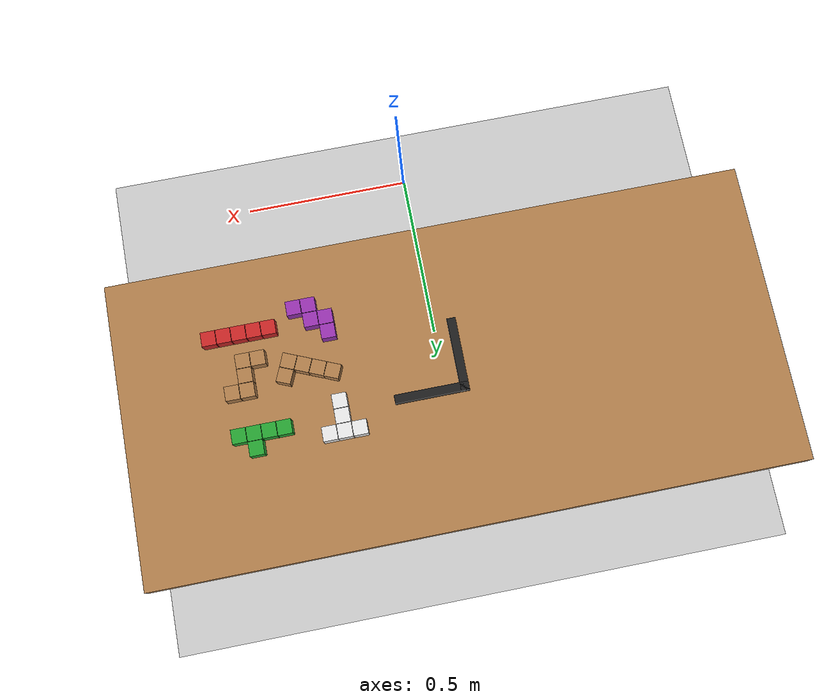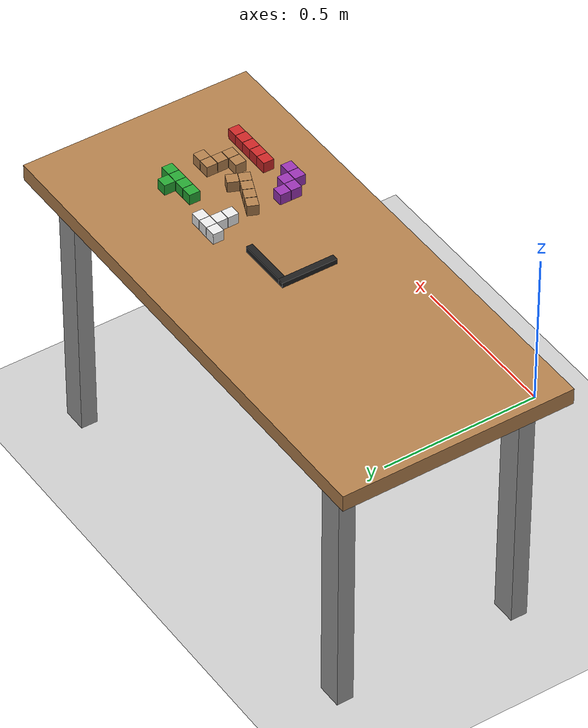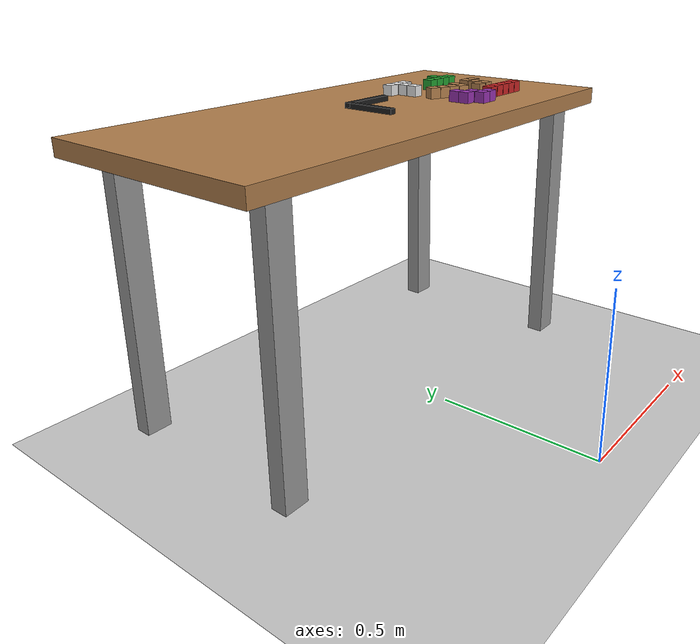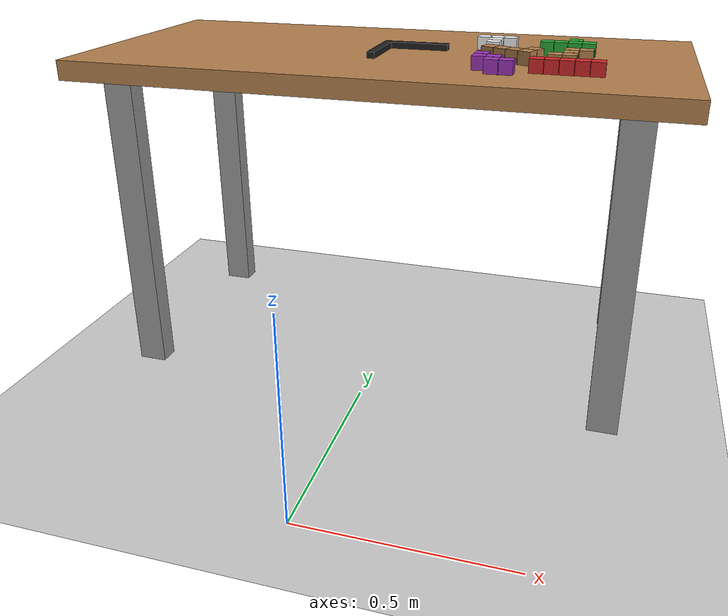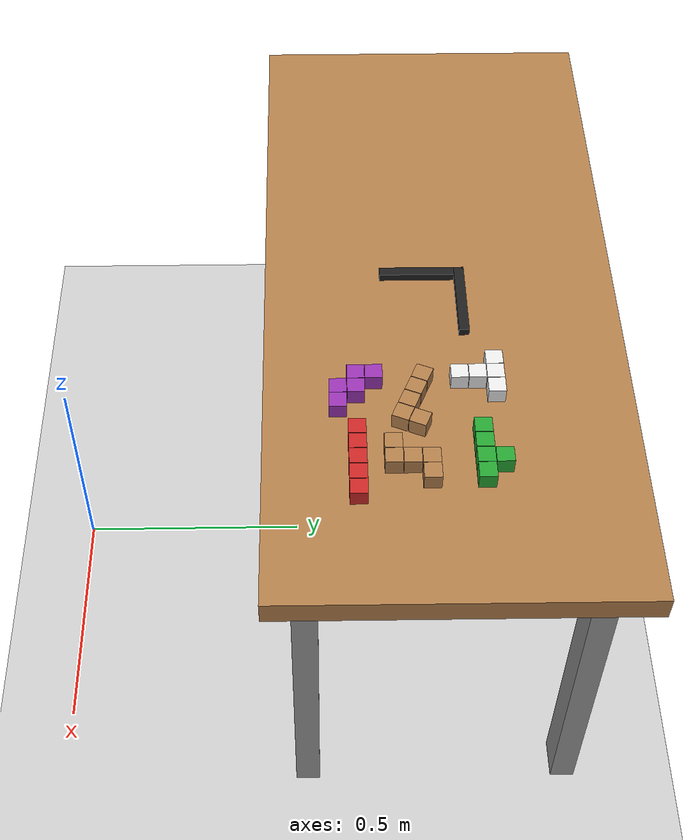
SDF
<?xml version="1.0" ?>
<!-- |    This document was autogenerated by xacro from euroc-freestyle.world.xacro    | -->
<!-- |    EDITING THIS FILE BY HAND IS NOT RECOMMENDED                                 | -->
<sdf version="1.4" xmlns:xacro="http://www.ros.org/wiki/xacro">
  <!-- only 4 yaws are allowed, given by tQ -->
  <!-- Only 0 and 3 (rotated -pi/2) accepted by now -->
  <!-- table pose in world frame -->
  <!-- pentomino-fixture name and pose in table frame -->
  <!-- grid pose in pentomino-fixture frame -->
  <!-- pentomino pose in grid frame -->
  <world name="pentomino_board6x5_8">
    <include>
      <uri>model://ground_plane</uri>
    </include>
    <include>
      <uri>model://sun</uri>
    </include>
    <include>
      <uri>model://DLR_workbench</uri>
      <name>workbench_fixture</name>
      <pose>0 0.8 00 0 0 4.71238898038</pose>
      <static>true</static>
    </include>
    <include>
      <uri>model://pentomino_fixture</uri>
      <pose>-0.01 0.83 0.85 0 0 4.71238898038</pose>
    </include>
    <include>
      <uri>model://pentomino_L</uri>
      <!-- if tQ == 3 -->
      <pose>0.326 0.724 0.883 0 3.14159265359 4.31096325242</pose>
    </include>
    <include>
      <uri>model://pentomino_I</uri>
      <!-- if tQ == 3 -->
      <pose>0.458 0.625 0.883 0 3.14159265359 4.71238898038</pose>
    </include>
    <include>
      <uri>model://pentomino_W</uri>
      <!-- if tQ == 3 -->
      <pose>0.293 0.625 0.883 0 3.14159265359 4.71238898038</pose>
    </include>
    <include>
      <uri>model://pentomino_T</uri>
      <!-- if tQ == 3 -->
      <pose>0.26 0.889 0.85 0 0.0 4.71238898038</pose>
    </include>
    <include>
      <uri>model://pentomino_Y</uri>
      <!-- if tQ == 3 -->
      <pose>0.458 0.856 0.883 0 3.14159265359 4.71238898038</pose>
    </include>
    <include>
      <uri>model://pentomino_Z</uri>
      <!-- if tQ == 3 -->
      <pose>0.458 0.724 0.883 0 3.14159265359 4.71238898038</pose>
    </include>
  </world>
</sdf>

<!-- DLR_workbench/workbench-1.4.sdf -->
<!-- |    This document was autogenerated by xacro from workbench-1.4.sdf.xacro        | -->
<!-- |    EDITING THIS FILE BY HAND IS NOT RECOMMENDED                                 | -->
<sdf version="1.4" xmlns:xacro="http://www.ros.org/wiki/xacro">
  <model name="DLR_workbench">
    <pose>0 0 0 0 0 0</pose>
    <static>false</static>
    <link name="main_body">
      <pose>0 0 0 0 0 0</pose>
      <!-- workbench top -->
      <collision name="top">
        <geometry>
          <box>
            <size>0.70 1.50 0.05</size>
          </box>
        </geometry>
        <pose>0 0 0.825 0 0 0</pose>
        <surface>
            <friction>
              <ode>
                <mu>0.7</mu>
                <mu2>0.7</mu2>
              </ode>
            </friction>
        </surface>
      </collision>
      <visual name="top">
        <geometry>
          <box>
            <size>0.70 1.50 0.05</size>
          </box>
        </geometry>
        <pose>0 0 0.825 0 0 0</pose>
        <material>
          <script>
            <name>Gazebo/Wood</name>
          </script>
        </material>
      </visual>
      <!-- left rear leg -->
      <collision name="left_rear_leg">
        <geometry>
          <box>
            <size>0.05 0.075 0.80</size>
          </box>
        </geometry>
        <pose>-0.275 -0.6225 0.40 0 0 0</pose>
      </collision>
      <visual name="left_rear_leg">
        <geometry>
          <box>
            <size>0.05 0.075 0.80</size>
          </box>
        </geometry>
        <pose>-0.275 -0.6225 0.40 0 0 0</pose>
        <material>
          <script>
            <name>Gazebo/Grey</name>
          </script>
        </material>
      </visual>
      <!-- right rear leg -->
      <collision name="left_rear_leg">
        <geometry>
          <box>
            <size>0.05 0.075 0.80</size>
          </box>
        </geometry>
        <pose>-0.275 0.6225 0.40 0 0 0</pose>
      </collision>
      <visual name="right_rear_leg">
        <geometry>
          <box>
            <size>0.05 0.075 0.80</size>
          </box>
        </geometry>
        <pose>-0.275 0.6225 0.40 0 0 0</pose>
        <material>
          <script>
            <name>Gazebo/Grey</name>
          </script>
        </material>
      </visual>
      <!-- left front leg -->
      <collision name="left_rear_leg">
        <geometry>
          <box>
            <size>0.05 0.075 0.80</size>
          </box>
        </geometry>
        <pose>0.275 -0.6225 0.40 0 0 0</pose>
      </collision>
      <visual name="left_front_leg">
        <geometry>
          <box>
            <size>0.05 0.075 0.80</size>
          </box>
        </geometry>
        <pose>0.275 -0.6225 0.40 0 0 0</pose>
        <material>
          <script>
            <name>Gazebo/Grey</name>
          </script>
        </material>
      </visual>
      <!-- right front leg -->
      <collision name="left_rear_leg">
        <geometry>
          <box>
            <size>0.05 0.075 0.80</size>
          </box>
        </geometry>
        <pose>0.275 0.6225 0.40 0 0 0</pose>
      </collision>
      <visual name="right_front_leg">
        <geometry>
          <box>
            <size>0.05 0.075 0.80</size>
          </box>
        </geometry>
        <pose>0.275 0.6225 0.40 0 0 0</pose>
        <material>
          <script>
            <name>Gazebo/Grey</name>
          </script>
        </material>
      </visual>
      <!-- inertial model -->
      <inertial>
        <pose>0 0 0.8204 0 0 0</pose>
        <mass>50.0</mass>
        <inertia>
          <!-- interias are tricky to compute -->
          <!-- http://answers.gazebosim.org/question/4372/the-inertia-matrix-explained/ -->
          <ixx>9.60785914583</ixx>
          <ixy>0.0</ixy>
          <ixz>0.0</ixz>
          <iyy>2.20301594404</iyy>
          <iyz>0.0</iyz>
          <izz>11.5369686393</izz>
        </inertia>
      </inertial>
    </link>
  </model>
</sdf>

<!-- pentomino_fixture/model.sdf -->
<!-- |    This document was autogenerated by xacro from model.sdf.xacro                | -->
<!-- |    EDITING THIS FILE BY HAND IS NOT RECOMMENDED                                 | -->
<sdf version="1.4" xmlns:xacro="http://www.ros.org/wiki/xacro">
  <model name="pentomino_fixture">
    <static>true</static>
    <link name="pentomino_fixture">
      <collision name="bar_H">
        <geometry>
          <box>
            <size>0.02 0.17 0.016</size>
          </box>
        </geometry>
        <pose>-0.01 0.065 0.008 0 0 0</pose>
      </collision>
      <visual name="bar_H">
        <geometry>
          <box>
            <size>0.02 0.17 0.016</size>
          </box>
        </geometry>
        <pose>-0.01 0.065 0.008 0 0 0</pose>
        <material>
          <script>
            <name>Gazebo/Black</name>
          </script>
        </material>
      </visual>
      <collision name="bar_V">
        <geometry>
          <box>
            <size>0.02 0.17 0.016</size>
          </box>
        </geometry>
        <pose>0.065 -0.01 0.008 0 0 1.57079632679</pose>
      </collision>
      <visual name="bar_V">
        <geometry>
          <box>
            <size>0.02 0.17 0.016</size>
          </box>
        </geometry>
        <pose>0.065 -0.01 0.008 0 0 1.57079632679</pose>
        <material>
          <script>
            <name>Gazebo/Black</name>
          </script>
        </material>
      </visual>
    </link>
  </model>
</sdf>

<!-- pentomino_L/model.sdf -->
<!-- |    This document was autogenerated by xacro from L.xacro                        | -->
<!-- |    EDITING THIS FILE BY HAND IS NOT RECOMMENDED                                 | -->
<sdf version="1.4" xmlns:xacro="http://www.ros.org/wiki/xacro">
  <model name="pentomino_L">
    <link name="pentomino_L">
      <velocity_decay>
        <linear>0.01</linear>
        <angular>1.0</angular>
      </velocity_decay>
      <visual name="cube_0_0">
        <pose>0.0 0.0 0.0165 0 0 0</pose>
        <geometry>
          <box>
            <size>0.033 0.033 0.033</size>
          </box>
        </geometry>
        <material>
          <script>
            <name>Gazebo/Wood</name>
          </script>
        </material>
      </visual>
      <collision name="cube_0_0">
        <pose>0.0 0.0 0.0165 0 0 0</pose>
        <geometry>
          <box>
            <size>0.033 0.033 0.033</size>
          </box>
        </geometry>
        <surface>
          <bounce>
            <restitution_coefficient>0.0</restitution_coefficient>
          </bounce>
          <friction>
            <ode>
              <mu>1.0</mu>
              <mu2>1.0</mu2>
            </ode>
          </friction>
        </surface>
      </collision>
      <visual name="cube_0_-1">
        <pose>0.0 -0.034 0.0165 0 0 0</pose>
        <geometry>
          <box>
            <size>0.033 0.033 0.033</size>
          </box>
        </geometry>
        <material>
          <script>
            <name>Gazebo/Wood</name>
          </script>
        </material>
      </visual>
      <collision name="cube_0_-1">
        <pose>0.0 -0.034 0.0165 0 0 0</pose>
        <geometry>
          <box>
            <size>0.033 0.033 0.033</size>
          </box>
        </geometry>
        <surface>
          <bounce>
            <restitution_coefficient>0.0</restitution_coefficient>
          </bounce>
          <friction>
            <ode>
              <mu>1.0</mu>
              <mu2>1.0</mu2>
            </ode>
          </friction>
        </surface>
      </collision>
      <visual name="cube_0_-2">
        <pose>0.0 -0.068 0.0165 0 0 0</pose>
        <geometry>
          <box>
            <size>0.033 0.033 0.033</size>
          </box>
        </geometry>
        <material>
          <script>
            <name>Gazebo/Wood</name>
          </script>
        </material>
      </visual>
      <collision name="cube_0_-2">
        <pose>0.0 -0.068 0.0165 0 0 0</pose>
        <geometry>
          <box>
            <size>0.033 0.033 0.033</size>
          </box>
        </geometry>
        <surface>
          <bounce>
            <restitution_coefficient>0.0</restitution_coefficient>
          </bounce>
          <friction>
            <ode>
              <mu>1.0</mu>
              <mu2>1.0</mu2>
            </ode>
          </friction>
        </surface>
      </collision>
      <visual name="cube_0_1">
        <pose>0.0 0.034 0.0165 0 0 0</pose>
        <geometry>
          <box>
            <size>0.033 0.033 0.033</size>
          </box>
        </geometry>
        <material>
          <script>
            <name>Gazebo/Wood</name>
          </script>
        </material>
      </visual>
      <collision name="cube_0_1">
        <pose>0.0 0.034 0.0165 0 0 0</pose>
        <geometry>
          <box>
            <size>0.033 0.033 0.033</size>
          </box>
        </geometry>
        <surface>
          <bounce>
            <restitution_coefficient>0.0</restitution_coefficient>
          </bounce>
          <friction>
            <ode>
              <mu>1.0</mu>
              <mu2>1.0</mu2>
            </ode>
          </friction>
        </surface>
      </collision>
      <visual name="cube_1_1">
        <pose>0.034 0.034 0.0165 0 0 0</pose>
        <geometry>
          <box>
            <size>0.033 0.033 0.033</size>
          </box>
        </geometry>
        <material>
          <script>
            <name>Gazebo/Wood</name>
          </script>
        </material>
      </visual>
      <collision name="cube_1_1">
        <pose>0.034 0.034 0.0165 0 0 0</pose>
        <geometry>
          <box>
            <size>0.033 0.033 0.033</size>
          </box>
        </geometry>
        <surface>
          <bounce>
            <restitution_coefficient>0.0</restitution_coefficient>
          </bounce>
          <friction>
            <ode>
              <mu>1.0</mu>
              <mu2>1.0</mu2>
            </ode>
          </friction>
        </surface>
      </collision>
      <inertial name="cube_0_0">
        <pose>0.034 0.034 0.0165 0 0 0</pose>
        <mass>0.2</mass>
        <inertia>
          <ixx>0.02178</ixx>
          <!-- TODO -->
          <iyy>0.02178</iyy>
          <izz>0.02178</izz>
          <ixy>0</ixy>
          <ixz>0</ixz>
          <iyz>0</iyz>
        </inertia>
      </inertial>
    </link>
  </model>
</sdf>

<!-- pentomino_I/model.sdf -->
<!-- |    This document was autogenerated by xacro from I.xacro                        | -->
<!-- |    EDITING THIS FILE BY HAND IS NOT RECOMMENDED                                 | -->
<sdf version="1.4" xmlns:xacro="http://www.ros.org/wiki/xacro">
  <model name="pentomino_I">
    <link name="pentomino_I">
      <velocity_decay>
        <linear>0.01</linear>
        <angular>1.0</angular>
      </velocity_decay>
      <visual name="cube_0_0">
        <pose>0.0 0.0 0.0165 0 0 0</pose>
        <geometry>
          <box>
            <size>0.033 0.033 0.033</size>
          </box>
        </geometry>
        <material>
          <script>
            <name>Gazebo/Red</name>
          </script>
        </material>
      </visual>
      <collision name="cube_0_0">
        <pose>0.0 0.0 0.0165 0 0 0</pose>
        <geometry>
          <box>
            <size>0.033 0.033 0.033</size>
          </box>
        </geometry>
        <surface>
          <bounce>
            <restitution_coefficient>0.0</restitution_coefficient>
          </bounce>
          <friction>
            <ode>
              <mu>1.0</mu>
              <mu2>1.0</mu2>
            </ode>
          </friction>
        </surface>
      </collision>
      <visual name="cube_0_1">
        <pose>0.0 0.034 0.0165 0 0 0</pose>
        <geometry>
          <box>
            <size>0.033 0.033 0.033</size>
          </box>
        </geometry>
        <material>
          <script>
            <name>Gazebo/Red</name>
          </script>
        </material>
      </visual>
      <collision name="cube_0_1">
        <pose>0.0 0.034 0.0165 0 0 0</pose>
        <geometry>
          <box>
            <size>0.033 0.033 0.033</size>
          </box>
        </geometry>
        <surface>
          <bounce>
            <restitution_coefficient>0.0</restitution_coefficient>
          </bounce>
          <friction>
            <ode>
              <mu>1.0</mu>
              <mu2>1.0</mu2>
            </ode>
          </friction>
        </surface>
      </collision>
      <visual name="cube_0_-1">
        <pose>0.0 -0.034 0.0165 0 0 0</pose>
        <geometry>
          <box>
            <size>0.033 0.033 0.033</size>
          </box>
        </geometry>
        <material>
          <script>
            <name>Gazebo/Red</name>
          </script>
        </material>
      </visual>
      <collision name="cube_0_-1">
        <pose>0.0 -0.034 0.0165 0 0 0</pose>
        <geometry>
          <box>
            <size>0.033 0.033 0.033</size>
          </box>
        </geometry>
        <surface>
          <bounce>
            <restitution_coefficient>0.0</restitution_coefficient>
          </bounce>
          <friction>
            <ode>
              <mu>1.0</mu>
              <mu2>1.0</mu2>
            </ode>
          </friction>
        </surface>
      </collision>
      <visual name="cube_0_2">
        <pose>0.0 0.068 0.0165 0 0 0</pose>
        <geometry>
          <box>
            <size>0.033 0.033 0.033</size>
          </box>
        </geometry>
        <material>
          <script>
            <name>Gazebo/Red</name>
          </script>
        </material>
      </visual>
      <collision name="cube_0_2">
        <pose>0.0 0.068 0.0165 0 0 0</pose>
        <geometry>
          <box>
            <size>0.033 0.033 0.033</size>
          </box>
        </geometry>
        <surface>
          <bounce>
            <restitution_coefficient>0.0</restitution_coefficient>
          </bounce>
          <friction>
            <ode>
              <mu>1.0</mu>
              <mu2>1.0</mu2>
            </ode>
          </friction>
        </surface>
      </collision>
      <visual name="cube_0_-2">
        <pose>0.0 -0.068 0.0165 0 0 0</pose>
        <geometry>
          <box>
            <size>0.033 0.033 0.033</size>
          </box>
        </geometry>
        <material>
          <script>
            <name>Gazebo/Red</name>
          </script>
        </material>
      </visual>
      <collision name="cube_0_-2">
        <pose>0.0 -0.068 0.0165 0 0 0</pose>
        <geometry>
          <box>
            <size>0.033 0.033 0.033</size>
          </box>
        </geometry>
        <surface>
          <bounce>
            <restitution_coefficient>0.0</restitution_coefficient>
          </bounce>
          <friction>
            <ode>
              <mu>1.0</mu>
              <mu2>1.0</mu2>
            </ode>
          </friction>
        </surface>
      </collision>
      <inertial name="cube_0_0">
        <pose>0.034 0.034 0.0165 0 0 0</pose>
        <mass>0.2</mass>
        <inertia>
          <ixx>0.02178</ixx>
          <!-- TODO -->
          <iyy>0.02178</iyy>
          <izz>0.02178</izz>
          <ixy>0</ixy>
          <ixz>0</ixz>
          <iyz>0</iyz>
        </inertia>
      </inertial>
    </link>
  </model>
</sdf>

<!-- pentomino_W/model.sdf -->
<!-- |    This document was autogenerated by xacro from W.xacro                        | -->
<!-- |    EDITING THIS FILE BY HAND IS NOT RECOMMENDED                                 | -->
<sdf version="1.4" xmlns:xacro="http://www.ros.org/wiki/xacro">
  <model name="pentomino_W">
    <link name="pentomino_W">
      <velocity_decay>
        <linear>0.01</linear>
        <angular>1.0</angular>
      </velocity_decay>
      <visual name="cube_0_0">
        <pose>0.0 0.0 0.0165 0 0 0</pose>
        <geometry>
          <box>
            <size>0.033 0.033 0.033</size>
          </box>
        </geometry>
        <material>
          <script>
            <name>Gazebo/Purple</name>
          </script>
        </material>
      </visual>
      <collision name="cube_0_0">
        <pose>0.0 0.0 0.0165 0 0 0</pose>
        <geometry>
          <box>
            <size>0.033 0.033 0.033</size>
          </box>
        </geometry>
        <surface>
          <bounce>
            <restitution_coefficient>0.0</restitution_coefficient>
          </bounce>
          <friction>
            <ode>
              <mu>1.0</mu>
              <mu2>1.0</mu2>
            </ode>
          </friction>
        </surface>
      </collision>
      <visual name="cube_-1_0">
        <pose>-0.034 0.0 0.0165 0 0 0</pose>
        <geometry>
          <box>
            <size>0.033 0.033 0.033</size>
          </box>
        </geometry>
        <material>
          <script>
            <name>Gazebo/Purple</name>
          </script>
        </material>
      </visual>
      <collision name="cube_-1_0">
        <pose>-0.034 0.0 0.0165 0 0 0</pose>
        <geometry>
          <box>
            <size>0.033 0.033 0.033</size>
          </box>
        </geometry>
        <surface>
          <bounce>
            <restitution_coefficient>0.0</restitution_coefficient>
          </bounce>
          <friction>
            <ode>
              <mu>1.0</mu>
              <mu2>1.0</mu2>
            </ode>
          </friction>
        </surface>
      </collision>
      <visual name="cube_-1_1">
        <pose>-0.034 0.034 0.0165 0 0 0</pose>
        <geometry>
          <box>
            <size>0.033 0.033 0.033</size>
          </box>
        </geometry>
        <material>
          <script>
            <name>Gazebo/Purple</name>
          </script>
        </material>
      </visual>
      <collision name="cube_-1_1">
        <pose>-0.034 0.034 0.0165 0 0 0</pose>
        <geometry>
          <box>
            <size>0.033 0.033 0.033</size>
          </box>
        </geometry>
        <surface>
          <bounce>
            <restitution_coefficient>0.0</restitution_coefficient>
          </bounce>
          <friction>
            <ode>
              <mu>1.0</mu>
              <mu2>1.0</mu2>
            </ode>
          </friction>
        </surface>
      </collision>
      <visual name="cube_0_-1">
        <pose>0.0 -0.034 0.0165 0 0 0</pose>
        <geometry>
          <box>
            <size>0.033 0.033 0.033</size>
          </box>
        </geometry>
        <material>
          <script>
            <name>Gazebo/Purple</name>
          </script>
        </material>
      </visual>
      <collision name="cube_0_-1">
        <pose>0.0 -0.034 0.0165 0 0 0</pose>
        <geometry>
          <box>
            <size>0.033 0.033 0.033</size>
          </box>
        </geometry>
        <surface>
          <bounce>
            <restitution_coefficient>0.0</restitution_coefficient>
          </bounce>
          <friction>
            <ode>
              <mu>1.0</mu>
              <mu2>1.0</mu2>
            </ode>
          </friction>
        </surface>
      </collision>
      <visual name="cube_1_-1">
        <pose>0.034 -0.034 0.0165 0 0 0</pose>
        <geometry>
          <box>
            <size>0.033 0.033 0.033</size>
          </box>
        </geometry>
        <material>
          <script>
            <name>Gazebo/Purple</name>
          </script>
        </material>
      </visual>
      <collision name="cube_1_-1">
        <pose>0.034 -0.034 0.0165 0 0 0</pose>
        <geometry>
          <box>
            <size>0.033 0.033 0.033</size>
          </box>
        </geometry>
        <surface>
          <bounce>
            <restitution_coefficient>0.0</restitution_coefficient>
          </bounce>
          <friction>
            <ode>
              <mu>1.0</mu>
              <mu2>1.0</mu2>
            </ode>
          </friction>
        </surface>
      </collision>
      <inertial name="cube_0_0">
        <pose>0.034 0.034 0.0165 0 0 0</pose>
        <mass>0.2</mass>
        <inertia>
          <ixx>0.02178</ixx>
          <!-- TODO -->
          <iyy>0.02178</iyy>
          <izz>0.02178</izz>
          <ixy>0</ixy>
          <ixz>0</ixz>
          <iyz>0</iyz>
        </inertia>
      </inertial>
    </link>
  </model>
</sdf>

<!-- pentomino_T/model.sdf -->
<!-- |    This document was autogenerated by xacro from T.xacro                        | -->
<!-- |    EDITING THIS FILE BY HAND IS NOT RECOMMENDED                                 | -->
<sdf version="1.4" xmlns:xacro="http://www.ros.org/wiki/xacro">
  <model name="pentomino_T">
    <link name="pentomino_T">
      <velocity_decay>
        <linear>0.01</linear>
        <angular>1.0</angular>
      </velocity_decay>
      <visual name="cube_0_0">
        <pose>0.0 0.0 0.0165 0 0 0</pose>
        <geometry>
          <box>
            <size>0.033 0.033 0.033</size>
          </box>
        </geometry>
        <material>
          <script>
            <name>Gazebo/White</name>
          </script>
        </material>
      </visual>
      <collision name="cube_0_0">
        <pose>0.0 0.0 0.0165 0 0 0</pose>
        <geometry>
          <box>
            <size>0.033 0.033 0.033</size>
          </box>
        </geometry>
        <surface>
          <bounce>
            <restitution_coefficient>0.0</restitution_coefficient>
          </bounce>
          <friction>
            <ode>
              <mu>1.0</mu>
              <mu2>1.0</mu2>
            </ode>
          </friction>
        </surface>
      </collision>
      <visual name="cube_0_-1">
        <pose>0.0 -0.034 0.0165 0 0 0</pose>
        <geometry>
          <box>
            <size>0.033 0.033 0.033</size>
          </box>
        </geometry>
        <material>
          <script>
            <name>Gazebo/White</name>
          </script>
        </material>
      </visual>
      <collision name="cube_0_-1">
        <pose>0.0 -0.034 0.0165 0 0 0</pose>
        <geometry>
          <box>
            <size>0.033 0.033 0.033</size>
          </box>
        </geometry>
        <surface>
          <bounce>
            <restitution_coefficient>0.0</restitution_coefficient>
          </bounce>
          <friction>
            <ode>
              <mu>1.0</mu>
              <mu2>1.0</mu2>
            </ode>
          </friction>
        </surface>
      </collision>
      <visual name="cube_0_1">
        <pose>0.0 0.034 0.0165 0 0 0</pose>
        <geometry>
          <box>
            <size>0.033 0.033 0.033</size>
          </box>
        </geometry>
        <material>
          <script>
            <name>Gazebo/White</name>
          </script>
        </material>
      </visual>
      <collision name="cube_0_1">
        <pose>0.0 0.034 0.0165 0 0 0</pose>
        <geometry>
          <box>
            <size>0.033 0.033 0.033</size>
          </box>
        </geometry>
        <surface>
          <bounce>
            <restitution_coefficient>0.0</restitution_coefficient>
          </bounce>
          <friction>
            <ode>
              <mu>1.0</mu>
              <mu2>1.0</mu2>
            </ode>
          </friction>
        </surface>
      </collision>
      <visual name="cube_1_0">
        <pose>0.034 0.0 0.0165 0 0 0</pose>
        <geometry>
          <box>
            <size>0.033 0.033 0.033</size>
          </box>
        </geometry>
        <material>
          <script>
            <name>Gazebo/White</name>
          </script>
        </material>
      </visual>
      <collision name="cube_1_0">
        <pose>0.034 0.0 0.0165 0 0 0</pose>
        <geometry>
          <box>
            <size>0.033 0.033 0.033</size>
          </box>
        </geometry>
        <surface>
          <bounce>
            <restitution_coefficient>0.0</restitution_coefficient>
          </bounce>
          <friction>
            <ode>
              <mu>1.0</mu>
              <mu2>1.0</mu2>
            </ode>
          </friction>
        </surface>
      </collision>
      <visual name="cube_2_0">
        <pose>0.068 0.0 0.0165 0 0 0</pose>
        <geometry>
          <box>
            <size>0.033 0.033 0.033</size>
          </box>
        </geometry>
        <material>
          <script>
            <name>Gazebo/White</name>
          </script>
        </material>
      </visual>
      <collision name="cube_2_0">
        <pose>0.068 0.0 0.0165 0 0 0</pose>
        <geometry>
          <box>
            <size>0.033 0.033 0.033</size>
          </box>
        </geometry>
        <surface>
          <bounce>
            <restitution_coefficient>0.0</restitution_coefficient>
          </bounce>
          <friction>
            <ode>
              <mu>1.0</mu>
              <mu2>1.0</mu2>
            </ode>
          </friction>
        </surface>
      </collision>
      <inertial name="cube_0_0">
        <pose>0.034 0.034 0.0165 0 0 0</pose>
        <mass>0.2</mass>
        <inertia>
          <ixx>0.02178</ixx>
          <!-- TODO -->
          <iyy>0.02178</iyy>
          <izz>0.02178</izz>
          <ixy>0</ixy>
          <ixz>0</ixz>
          <iyz>0</iyz>
        </inertia>
      </inertial>
    </link>
  </model>
</sdf>

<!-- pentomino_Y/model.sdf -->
<!-- |    This document was autogenerated by xacro from Y.xacro                        | -->
<!-- |    EDITING THIS FILE BY HAND IS NOT RECOMMENDED                                 | -->
<sdf version="1.4" xmlns:xacro="http://www.ros.org/wiki/xacro">
  <model name="pentomino_Y">
    <link name="pentomino_Y">
      <velocity_decay>
        <linear>0.01</linear>
        <angular>1.0</angular>
      </velocity_decay>
      <visual name="cube_0_0">
        <pose>0.0 0.0 0.0165 0 0 0</pose>
        <geometry>
          <box>
            <size>0.033 0.033 0.033</size>
          </box>
        </geometry>
        <material>
          <script>
            <name>Gazebo/Green</name>
          </script>
        </material>
      </visual>
      <collision name="cube_0_0">
        <pose>0.0 0.0 0.0165 0 0 0</pose>
        <geometry>
          <box>
            <size>0.033 0.033 0.033</size>
          </box>
        </geometry>
        <surface>
          <bounce>
            <restitution_coefficient>0.0</restitution_coefficient>
          </bounce>
          <friction>
            <ode>
              <mu>1.0</mu>
              <mu2>1.0</mu2>
            </ode>
          </friction>
        </surface>
      </collision>
      <visual name="cube_0_-1">
        <pose>0.0 -0.034 0.0165 0 0 0</pose>
        <geometry>
          <box>
            <size>0.033 0.033 0.033</size>
          </box>
        </geometry>
        <material>
          <script>
            <name>Gazebo/Green</name>
          </script>
        </material>
      </visual>
      <collision name="cube_0_-1">
        <pose>0.0 -0.034 0.0165 0 0 0</pose>
        <geometry>
          <box>
            <size>0.033 0.033 0.033</size>
          </box>
        </geometry>
        <surface>
          <bounce>
            <restitution_coefficient>0.0</restitution_coefficient>
          </bounce>
          <friction>
            <ode>
              <mu>1.0</mu>
              <mu2>1.0</mu2>
            </ode>
          </friction>
        </surface>
      </collision>
      <visual name="cube_0_-2">
        <pose>0.0 -0.068 0.0165 0 0 0</pose>
        <geometry>
          <box>
            <size>0.033 0.033 0.033</size>
          </box>
        </geometry>
        <material>
          <script>
            <name>Gazebo/Green</name>
          </script>
        </material>
      </visual>
      <collision name="cube_0_-2">
        <pose>0.0 -0.068 0.0165 0 0 0</pose>
        <geometry>
          <box>
            <size>0.033 0.033 0.033</size>
          </box>
        </geometry>
        <surface>
          <bounce>
            <restitution_coefficient>0.0</restitution_coefficient>
          </bounce>
          <friction>
            <ode>
              <mu>1.0</mu>
              <mu2>1.0</mu2>
            </ode>
          </friction>
        </surface>
      </collision>
      <visual name="cube_0_1">
        <pose>0.0 0.034 0.0165 0 0 0</pose>
        <geometry>
          <box>
            <size>0.033 0.033 0.033</size>
          </box>
        </geometry>
        <material>
          <script>
            <name>Gazebo/Green</name>
          </script>
        </material>
      </visual>
      <collision name="cube_0_1">
        <pose>0.0 0.034 0.0165 0 0 0</pose>
        <geometry>
          <box>
            <size>0.033 0.033 0.033</size>
          </box>
        </geometry>
        <surface>
          <bounce>
            <restitution_coefficient>0.0</restitution_coefficient>
          </bounce>
          <friction>
            <ode>
              <mu>1.0</mu>
              <mu2>1.0</mu2>
            </ode>
          </friction>
        </surface>
      </collision>
      <visual name="cube_1_0">
        <pose>0.034 0.0 0.0165 0 0 0</pose>
        <geometry>
          <box>
            <size>0.033 0.033 0.033</size>
          </box>
        </geometry>
        <material>
          <script>
            <name>Gazebo/Green</name>
          </script>
        </material>
      </visual>
      <collision name="cube_1_0">
        <pose>0.034 0.0 0.0165 0 0 0</pose>
        <geometry>
          <box>
            <size>0.033 0.033 0.033</size>
          </box>
        </geometry>
        <surface>
          <bounce>
            <restitution_coefficient>0.0</restitution_coefficient>
          </bounce>
          <friction>
            <ode>
              <mu>1.0</mu>
              <mu2>1.0</mu2>
            </ode>
          </friction>
        </surface>
      </collision>
      <inertial name="cube_0_0">
        <pose>0.034 0.034 0.0165 0 0 0</pose>
        <mass>0.2</mass>
        <inertia>
          <ixx>0.02178</ixx>
          <!-- TODO -->
          <iyy>0.02178</iyy>
          <izz>0.02178</izz>
          <ixy>0</ixy>
          <ixz>0</ixz>
          <iyz>0</iyz>
        </inertia>
      </inertial>
    </link>
  </model>
</sdf>

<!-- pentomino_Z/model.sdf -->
<!-- |    This document was autogenerated by xacro from Z.xacro                        | -->
<!-- |    EDITING THIS FILE BY HAND IS NOT RECOMMENDED                                 | -->
<sdf version="1.4" xmlns:xacro="http://www.ros.org/wiki/xacro">
  <model name="pentomino_Z">
    <link name="pentomino_Z">
      <velocity_decay>
        <linear>0.01</linear>
        <angular>1.0</angular>
      </velocity_decay>
      <visual name="cube_0_0">
        <pose>0.0 0.0 0.0165 0 0 0</pose>
        <geometry>
          <box>
            <size>0.033 0.033 0.033</size>
          </box>
        </geometry>
        <material>
          <script>
            <name>Gazebo/Wood</name>
          </script>
        </material>
      </visual>
      <collision name="cube_0_0">
        <pose>0.0 0.0 0.0165 0 0 0</pose>
        <geometry>
          <box>
            <size>0.033 0.033 0.033</size>
          </box>
        </geometry>
        <surface>
          <bounce>
            <restitution_coefficient>0.0</restitution_coefficient>
          </bounce>
          <friction>
            <ode>
              <mu>1.0</mu>
              <mu2>1.0</mu2>
            </ode>
          </friction>
        </surface>
      </collision>
      <visual name="cube_-1_0">
        <pose>-0.034 0.0 0.0165 0 0 0</pose>
        <geometry>
          <box>
            <size>0.033 0.033 0.033</size>
          </box>
        </geometry>
        <material>
          <script>
            <name>Gazebo/Wood</name>
          </script>
        </material>
      </visual>
      <collision name="cube_-1_0">
        <pose>-0.034 0.0 0.0165 0 0 0</pose>
        <geometry>
          <box>
            <size>0.033 0.033 0.033</size>
          </box>
        </geometry>
        <surface>
          <bounce>
            <restitution_coefficient>0.0</restitution_coefficient>
          </bounce>
          <friction>
            <ode>
              <mu>1.0</mu>
              <mu2>1.0</mu2>
            </ode>
          </friction>
        </surface>
      </collision>
      <visual name="cube_1_0">
        <pose>0.034 0.0 0.0165 0 0 0</pose>
        <geometry>
          <box>
            <size>0.033 0.033 0.033</size>
          </box>
        </geometry>
        <material>
          <script>
            <name>Gazebo/Wood</name>
          </script>
        </material>
      </visual>
      <collision name="cube_1_0">
        <pose>0.034 0.0 0.0165 0 0 0</pose>
        <geometry>
          <box>
            <size>0.033 0.033 0.033</size>
          </box>
        </geometry>
        <surface>
          <bounce>
            <restitution_coefficient>0.0</restitution_coefficient>
          </bounce>
          <friction>
            <ode>
              <mu>1.0</mu>
              <mu2>1.0</mu2>
            </ode>
          </friction>
        </surface>
      </collision>
      <visual name="cube_-1_-1">
        <pose>-0.034 -0.034 0.0165 0 0 0</pose>
        <geometry>
          <box>
            <size>0.033 0.033 0.033</size>
          </box>
        </geometry>
        <material>
          <script>
            <name>Gazebo/Wood</name>
          </script>
        </material>
      </visual>
      <collision name="cube_-1_-1">
        <pose>-0.034 -0.034 0.0165 0 0 0</pose>
        <geometry>
          <box>
            <size>0.033 0.033 0.033</size>
          </box>
        </geometry>
        <surface>
          <bounce>
            <restitution_coefficient>0.0</restitution_coefficient>
          </bounce>
          <friction>
            <ode>
              <mu>1.0</mu>
              <mu2>1.0</mu2>
            </ode>
          </friction>
        </surface>
      </collision>
      <visual name="cube_1_1">
        <pose>0.034 0.034 0.0165 0 0 0</pose>
        <geometry>
          <box>
            <size>0.033 0.033 0.033</size>
          </box>
        </geometry>
        <material>
          <script>
            <name>Gazebo/Wood</name>
          </script>
        </material>
      </visual>
      <collision name="cube_1_1">
        <pose>0.034 0.034 0.0165 0 0 0</pose>
        <geometry>
          <box>
            <size>0.033 0.033 0.033</size>
          </box>
        </geometry>
        <surface>
          <bounce>
            <restitution_coefficient>0.0</restitution_coefficient>
          </bounce>
          <friction>
            <ode>
              <mu>1.0</mu>
              <mu2>1.0</mu2>
            </ode>
          </friction>
        </surface>
      </collision>
      <inertial name="cube_0_0">
        <pose>0.034 0.034 0.0165 0 0 0</pose>
        <mass>0.2</mass>
        <inertia>
          <ixx>0.02178</ixx>
          <!-- TODO -->
          <iyy>0.02178</iyy>
          <izz>0.02178</izz>
          <ixy>0</ixy>
          <ixz>0</ixz>
          <iyz>0</iyz>
        </inertia>
      </inertial>
    </link>
  </model>
</sdf>
